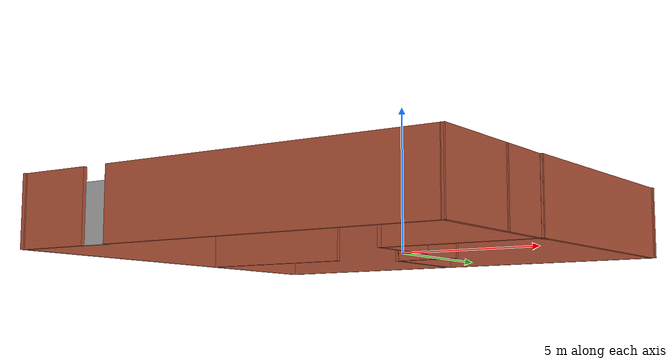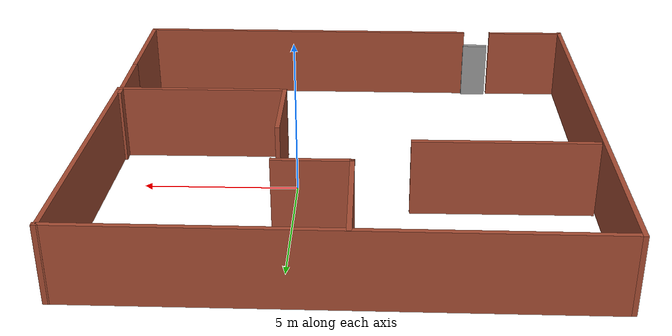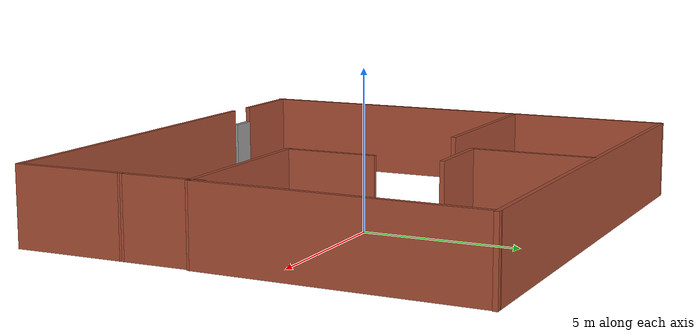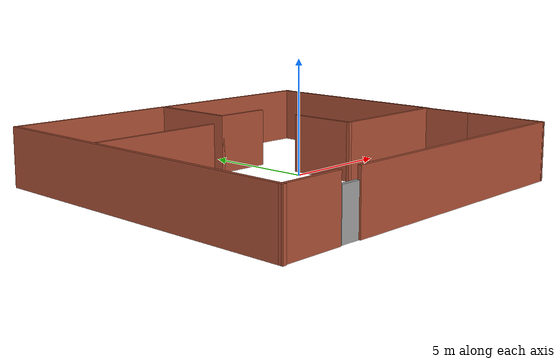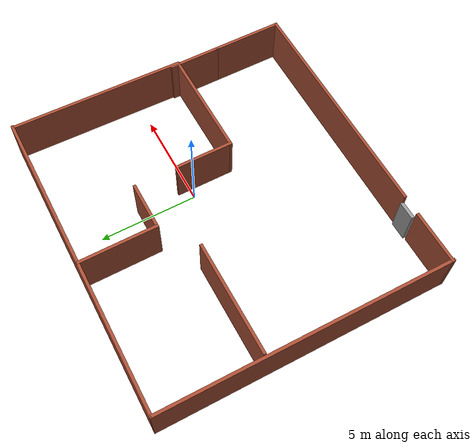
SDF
<?xml version='1.0'?>
<sdf version='1.6'>
  <model name='building'>
    <pose frame=''>-1.57949 -0.66263 0 0 -0 0</pose>
    <link name='Door_0'>
      <collision name='Door_0_Collision'>
        <geometry>
          <box>
            <size>0.9 0.17 2</size>
          </box>
        </geometry>
        <pose frame=''>0 0 1 0 -0 0</pose>
      </collision>
      <visual name='Door_0_Visual'>
        <pose frame=''>0 0 1 0 -0 0</pose>
        <geometry>
          <box>
            <size>0.9 0.17 2</size>
          </box>
        </geometry>
        <material>
          <script>
            <uri>file://media/materials/scripts/gazebo.material</uri>
            <name>Gazebo/Grey</name>
          </script>
        </material>
      </visual>
      <pose frame=''>-4.74919 -7.23334 0 0 -0 0</pose>
    </link>
    <link name='Wall_0'>
      <collision name='Wall_0_Collision'>
        <geometry>
          <box>
            <size>2.75 0.15 2.5</size>
          </box>
        </geometry>
        <pose frame=''>0 0 1.25 0 -0 0</pose>
      </collision>
      <visual name='Wall_0_Visual'>
        <pose frame=''>0 0 1.25 0 -0 0</pose>
        <geometry>
          <box>
            <size>2.75 0.15 2.5</size>
          </box>
        </geometry>
        <material>
          <script>
            <uri>file://media/materials/scripts/gazebo.material</uri>
            <name>Gazebo/Bricks</name>
          </script>
          <ambient>1 1 1 1</ambient>
        </material>
        <meta>
          <layer>0</layer>
        </meta>
      </visual>
      <pose frame=''>-6.65686 -7.2908 0 0 -0 3.14159</pose>
    </link>
    <link name='Wall_1'>
      <collision name='Wall_1_Collision'>
        <geometry>
          <box>
            <size>14.8581 0.15 2.5</size>
          </box>
        </geometry>
        <pose frame=''>0 0 1.25 0 -0 0</pose>
      </collision>
      <visual name='Wall_1_Visual'>
        <pose frame=''>0 0 1.25 0 -0 0</pose>
        <geometry>
          <box>
            <size>14.8581 0.15 2.5</size>
          </box>
        </geometry>
        <material>
          <script>
            <uri>file://media/materials/scripts/gazebo.material</uri>
            <name>Gazebo/Bricks</name>
          </script>
          <ambient>1 1 1 1</ambient>
        </material>
        <meta>
          <layer>0</layer>
        </meta>
      </visual>
      <pose frame=''>-7.90524 0.016053 0 0 -0 1.56378</pose>
    </link>
    <link name='Wall_12'>
      <collision name='Wall_12_Collision'>
        <geometry>
          <box>
            <size>11.9953 0.15 2.5</size>
          </box>
        </geometry>
        <pose frame=''>0 0 1.25 0 -0 0</pose>
      </collision>
      <visual name='Wall_12_Visual'>
        <pose frame=''>0 0 1.25 0 -0 0</pose>
        <geometry>
          <box>
            <size>11.9953 0.15 2.5</size>
          </box>
        </geometry>
        <material>
          <script>
            <uri>file://media/materials/scripts/gazebo.material</uri>
            <name>Gazebo/Bricks</name>
          </script>
          <ambient>1 1 1 1</ambient>
        </material>
        <meta>
          <layer>0</layer>
        </meta>
      </visual>
      <pose frame=''>1.67372 -7.34034 0 0 -0 3.13658</pose>
    </link>
    <link name='Wall_16'>
      <collision name='Wall_16_Collision'>
        <geometry>
          <box>
            <size>5.75 0.15 2.5</size>
          </box>
        </geometry>
        <pose frame=''>0 0 1.25 0 -0 0</pose>
      </collision>
      <visual name='Wall_16_Visual'>
        <pose frame=''>0 0 1.25 0 -0 0</pose>
        <geometry>
          <box>
            <size>5.75 0.15 2.5</size>
          </box>
        </geometry>
        <material>
          <script>
            <uri>file://media/materials/scripts/gazebo.material</uri>
            <name>Gazebo/Bricks</name>
          </script>
          <ambient>1 1 1 1</ambient>
        </material>
        <meta>
          <layer>0</layer>
        </meta>
      </visual>
      <pose frame=''>4.92415 -1.63034 0 0 -0 3.14159</pose>
    </link>
    <link name='Wall_17'>
      <collision name='Wall_17_Collision'>
        <geometry>
          <box>
            <size>3 0.15 2.5</size>
          </box>
        </geometry>
        <pose frame=''>0 0 1.25 0 -0 0</pose>
      </collision>
      <visual name='Wall_17_Visual'>
        <pose frame=''>0 0 1.25 0 -0 0</pose>
        <geometry>
          <box>
            <size>3 0.15 2.5</size>
          </box>
        </geometry>
        <material>
          <script>
            <uri>file://media/materials/scripts/gazebo.material</uri>
            <name>Gazebo/Bricks</name>
          </script>
          <ambient>1 1 1 1</ambient>
        </material>
        <meta>
          <layer>0</layer>
        </meta>
      </visual>
      <pose frame=''>2.12415 -0.205343 0 0 -0 1.5708</pose>
    </link>
    <link name='Wall_19'>
      <collision name='Wall_19_Collision'>
        <geometry>
          <box>
            <size>2.75 0.15 2.5</size>
          </box>
        </geometry>
        <pose frame=''>0 0 1.25 0 -0 0</pose>
      </collision>
      <visual name='Wall_19_Visual'>
        <pose frame=''>0 0 1.25 0 -0 0</pose>
        <geometry>
          <box>
            <size>2.75 0.15 2.5</size>
          </box>
        </geometry>
        <material>
          <script>
            <uri>file://media/materials/scripts/gazebo.material</uri>
            <name>Gazebo/Bricks</name>
          </script>
          <ambient>1 1 1 1</ambient>
        </material>
        <meta>
          <layer>0</layer>
        </meta>
      </visual>
      <pose frame=''>7.64512 -2.5672 0 0 -0 1.5708</pose>
    </link>
    <link name='Wall_2'>
      <collision name='Wall_2_Collision'>
        <geometry>
          <box>
            <size>15.9144 0.15 2.5</size>
          </box>
        </geometry>
        <pose frame=''>0 0 1.25 0 -0 0</pose>
      </collision>
      <visual name='Wall_2_Visual'>
        <pose frame=''>0 0 1.25 0 -0 0</pose>
        <geometry>
          <box>
            <size>15.9144 0.15 2.5</size>
          </box>
        </geometry>
        <material>
          <script>
            <uri>file://media/materials/scripts/gazebo.material</uri>
            <name>Gazebo/Bricks</name>
          </script>
          <ambient>1 1 1 1</ambient>
        </material>
        <meta>
          <layer>0</layer>
        </meta>
      </visual>
      <pose frame=''>0.074841 7.30403 0 0 0 -0.008298</pose>
    </link>
    <link name='Wall_21'>
      <collision name='Wall_21_Collision'>
        <geometry>
          <box>
            <size>5.75 0.15 2.5</size>
          </box>
        </geometry>
        <pose frame=''>0 0 1.25 0 -0 0</pose>
      </collision>
      <visual name='Wall_21_Visual'>
        <pose frame=''>0 0 1.25 0 -0 0</pose>
        <geometry>
          <box>
            <size>5.75 0.15 2.5</size>
          </box>
        </geometry>
        <material>
          <script>
            <uri>file://media/materials/scripts/gazebo.material</uri>
            <name>Gazebo/Bricks</name>
          </script>
          <ambient>1 1 1 1</ambient>
        </material>
        <meta>
          <layer>0</layer>
        </meta>
      </visual>
      <pose frame=''>-4.89371 2.11613 0 0 -0 0</pose>
    </link>
    <link name='Wall_23'>
      <collision name='Wall_23_Collision'>
        <geometry>
          <box>
            <size>4 0.15 2.5</size>
          </box>
        </geometry>
        <pose frame=''>0 0 1.25 0 -0 0</pose>
      </collision>
      <visual name='Wall_23_Visual'>
        <pose frame=''>0 0 1.25 0 -0 0</pose>
        <geometry>
          <box>
            <size>4 0.15 2.5</size>
          </box>
        </geometry>
        <material>
          <script>
            <uri>file://media/materials/scripts/gazebo.material</uri>
            <name>Gazebo/Bricks</name>
          </script>
          <ambient>1 1 1 1</ambient>
        </material>
        <meta>
          <layer>0</layer>
        </meta>
      </visual>
      <pose frame=''>-0.264221 5.3564 0 0 0 -1.5708</pose>
    </link>
    <link name='Wall_24'>
      <collision name='Wall_24_Collision'>
        <geometry>
          <box>
            <size>2.5 0.15 2.5</size>
          </box>
        </geometry>
        <pose frame=''>0 0 1.25 0 -0 0</pose>
      </collision>
      <visual name='Wall_24_Visual'>
        <pose frame=''>0 0 1.25 0 -0 0</pose>
        <geometry>
          <box>
            <size>2.5 0.15 2.5</size>
          </box>
        </geometry>
        <material>
          <script>
            <uri>file://media/materials/scripts/gazebo.material</uri>
            <name>Gazebo/Bricks</name>
          </script>
          <ambient>1 1 1 1</ambient>
        </material>
        <meta>
          <layer>0</layer>
        </meta>
      </visual>
      <pose frame=''>0.910779 3.4314 0 0 -0 0</pose>
    </link>
    <link name='Wall_3'>
      <collision name='Wall_3_Collision'>
        <geometry>
          <box>
            <size>9.02092 0.15 2.5</size>
          </box>
        </geometry>
        <pose frame=''>0 0 1.25 0 -0 0</pose>
      </collision>
      <visual name='Wall_3_Visual'>
        <pose frame=''>0 0 1.25 0 -0 0</pose>
        <geometry>
          <box>
            <size>9.02092 0.15 2.5</size>
          </box>
        </geometry>
        <material>
          <script>
            <uri>file://media/materials/scripts/gazebo.material</uri>
            <name>Gazebo/Bricks</name>
          </script>
          <ambient>1 1 1 1</ambient>
        </material>
        <meta>
          <layer>0</layer>
        </meta>
      </visual>
      <pose frame=''>7.8172 2.80414 0 0 0 -1.59178</pose>
    </link>
    <link name='Wall_7'>
      <collision name='Wall_7_Collision'>
        <geometry>
          <box>
            <size>3.65285 0.15 2.5</size>
          </box>
        </geometry>
        <pose frame=''>0 0 1.25 0 -0 0</pose>
      </collision>
      <visual name='Wall_7_Visual'>
        <pose frame=''>0 0 1.25 0 -0 0</pose>
        <geometry>
          <box>
            <size>3.65285 0.15 2.5</size>
          </box>
        </geometry>
        <material>
          <script>
            <uri>file://media/materials/scripts/gazebo.material</uri>
            <name>Gazebo/Bricks</name>
          </script>
          <ambient>1 1 1 1</ambient>
        </material>
        <meta>
          <layer>0</layer>
        </meta>
      </visual>
      <pose frame=''>7.64398 -5.61863 0 0 0 -1.57145</pose>
    </link>
    <static>1</static>
  </model>
</sdf>
